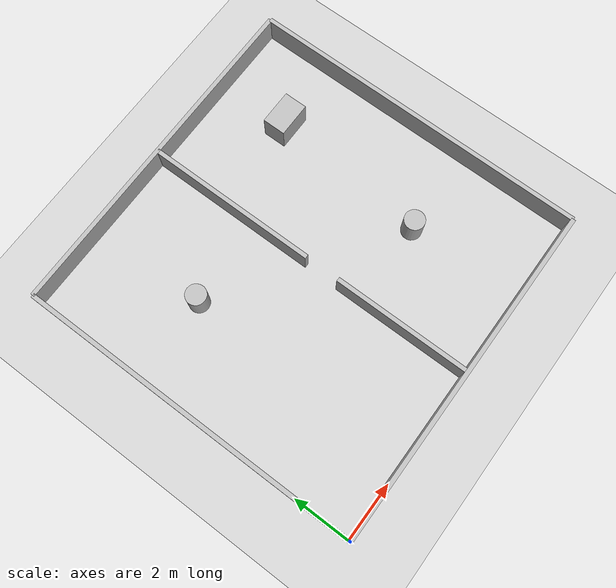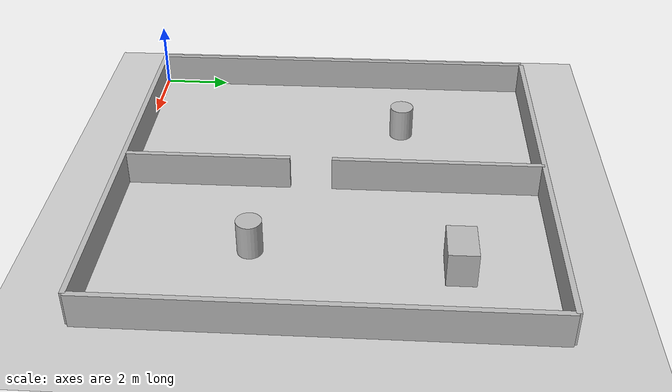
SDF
<?xml version="1.0" ?>
<!-- ARC warehouse. Deliberately low polygon: this must run on the weakest
     laboratory PC in graphics Tier B, not look impressive in a screenshot. -->
<sdf version="1.9">
  <world name="arc_warehouse">
    <physics name="1ms" type="ignored">
      <max_step_size>0.001</max_step_size>
      <real_time_factor>1.0</real_time_factor>
    </physics>

    <plugin filename="gz-sim-physics-system" name="gz::sim::systems::Physics"/>
    <plugin filename="gz-sim-user-commands-system" name="gz::sim::systems::UserCommands"/>
    <plugin filename="gz-sim-scene-broadcaster-system" name="gz::sim::systems::SceneBroadcaster"/>
    <plugin filename="gz-sim-sensors-system" name="gz::sim::systems::Sensors">
      <render_engine>ogre2</render_engine>
    </plugin>
    <plugin filename="gz-sim-imu-system" name="gz::sim::systems::Imu"/>

    <light type="directional" name="sun">
      <cast_shadows>false</cast_shadows>
      <pose>0 0 10 0 0 0</pose>
      <diffuse>0.9 0.9 0.9 1</diffuse>
      <specular>0.2 0.2 0.2 1</specular>
      <direction>-0.5 0.2 -0.9</direction>
    </light>

    <model name="ground_plane">
      <static>true</static>
      <link name="link">
        <collision name="collision">
          <geometry><plane><normal>0 0 1</normal><size>40 40</size></plane></geometry>
        </collision>
        <visual name="visual">
          <geometry><plane><normal>0 0 1</normal><size>40 40</size></plane></geometry>
          <material><ambient>0.8 0.8 0.8 1</ambient><diffuse>0.8 0.8 0.8 1</diffuse></material>
        </visual>
      </link>
    </model>

    <!-- Perimeter: a 12 x 12 m room. -->
    <model name="walls">
      <static>true</static>
      <link name="link">
        <collision name="n"><pose>6 12 0.5 0 0 0</pose>
          <geometry><box><size>12 0.15 1.0</size></box></geometry></collision>
        <visual name="nv"><pose>6 12 0.5 0 0 0</pose>
          <geometry><box><size>12 0.15 1.0</size></box></geometry></visual>
        <collision name="s"><pose>6 0 0.5 0 0 0</pose>
          <geometry><box><size>12 0.15 1.0</size></box></geometry></collision>
        <visual name="sv"><pose>6 0 0.5 0 0 0</pose>
          <geometry><box><size>12 0.15 1.0</size></box></geometry></visual>
        <collision name="w"><pose>0 6 0.5 0 0 0</pose>
          <geometry><box><size>0.15 12 1.0</size></box></geometry></collision>
        <visual name="wv"><pose>0 6 0.5 0 0 0</pose>
          <geometry><box><size>0.15 12 1.0</size></box></geometry></visual>
        <collision name="e"><pose>12 6 0.5 0 0 0</pose>
          <geometry><box><size>0.15 12 1.0</size></box></geometry></collision>
        <visual name="ev"><pose>12 6 0.5 0 0 0</pose>
          <geometry><box><size>0.15 12 1.0</size></box></geometry></visual>
      </link>
    </model>

    <!-- A partition with a 1.2 m doorway. Lab 5 plans through this gap, and it
         is the one that closes when the inflation radius is set too large. -->
    <model name="partition">
      <static>true</static>
      <link name="link">
        <collision name="lower"><pose>6 2.4 0.5 0 0 0</pose>
          <geometry><box><size>0.15 4.8 1.0</size></box></geometry></collision>
        <visual name="lowerv"><pose>6 2.4 0.5 0 0 0</pose>
          <geometry><box><size>0.15 4.8 1.0</size></box></geometry></visual>
        <collision name="upper"><pose>6 9.0 0.5 0 0 0</pose>
          <geometry><box><size>0.15 6.0 1.0</size></box></geometry></collision>
        <visual name="upperv"><pose>6 9.0 0.5 0 0 0</pose>
          <geometry><box><size>0.15 6.0 1.0</size></box></geometry></visual>
      </link>
    </model>

    <model name="pillars">
      <static>true</static>
      <link name="link">
        <collision name="p1"><pose>3 8 0.5 0 0 0</pose>
          <geometry><cylinder><radius>0.35</radius><length>1.0</length></cylinder></geometry></collision>
        <visual name="p1v"><pose>3 8 0.5 0 0 0</pose>
          <geometry><cylinder><radius>0.35</radius><length>1.0</length></cylinder></geometry></visual>
        <collision name="p2"><pose>9 4 0.5 0 0 0</pose>
          <geometry><cylinder><radius>0.35</radius><length>1.0</length></cylinder></geometry></collision>
        <visual name="p2v"><pose>9 4 0.5 0 0 0</pose>
          <geometry><cylinder><radius>0.35</radius><length>1.0</length></cylinder></geometry></visual>
        <collision name="p3"><pose>9.5 9.5 0.5 0 0 0</pose>
          <geometry><box><size>1.2 0.8 1.0</size></box></geometry></collision>
        <visual name="p3v"><pose>9.5 9.5 0.5 0 0 0</pose>
          <geometry><box><size>1.2 0.8 1.0</size></box></geometry></visual>
      </link>
    </model>
  </world>
</sdf>
